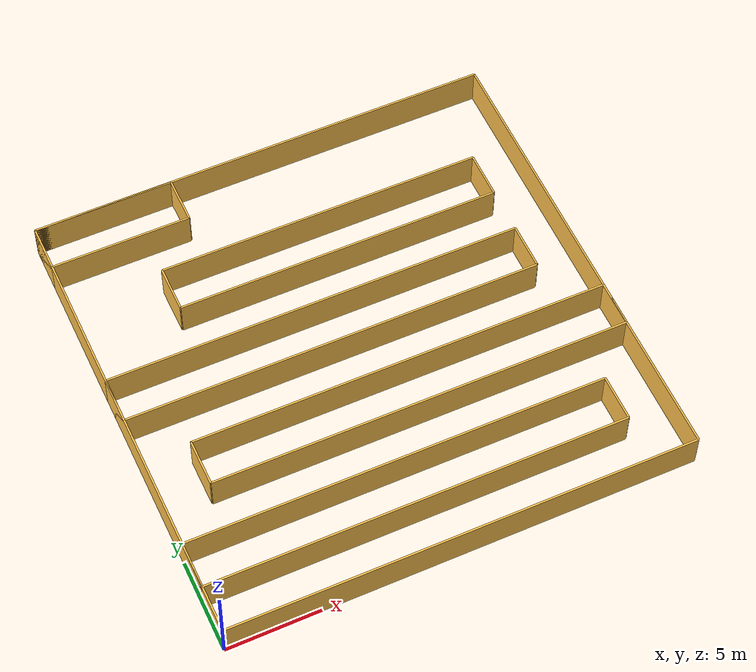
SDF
<?xml version='1.0' encoding='utf-8'?>
<sdf version="1.6">
  <model name="scene_2">
    <static>true</static>
    <link name="wall_0">
      <pose>11.25 2.5 1.0 0 0 0.0</pose>
      <self_collide>0</self_collide>
      <kinematic>0</kinematic>
      <visual name="wall_0_visual">
        <geometry>
          <box>
            <size>22.5 0.1 2.0</size>
            </box>
          </geometry>
        <material>
          <script>
            <uri>file://media/materials/scripts/gazebo.material</uri>
            <name>Gazebo/Grey</name>
            </script>
          <ambient>1 0.764706 0.305882 1</ambient>
          <diffuse>0.7 0.7 0.7 1</diffuse>
          <specular>0.01 0.01 0.01 1</specular>
          <emissive>0 0 0 1</emissive>
          <shader type="pixel" />
          </material>
        <cast_shadows>1</cast_shadows>
        <transparency>0</transparency>
        </visual>
      <collision name="wall_0_collision">
        <geometry>
          <box>
            <size>22.5 0.1 2.0</size>
            </box>
          </geometry>
        <laser_retro>0</laser_retro>
        <max_contacts>10</max_contacts>
        <surface>
          <friction>
            <ode>
              <mu>1</mu>
              <mu2>1</mu2>
              <fdir1>0 0 0</fdir1>
              <slip1>0</slip1>
              <slip2>0</slip2>
              </ode>
            </friction>
          <bounce>
            <restitution_coefficient>0</restitution_coefficient>
            <threshold>1000000</threshold>
            </bounce>
          <contact>
            <collide_without_contact>0</collide_without_contact>
            <collide_without_contact_bitmask>1</collide_without_contact_bitmask>
            <collide_bitmask>1</collide_bitmask>
            <ode>
              <soft_cfm>0</soft_cfm>
              <soft_erp>0.2</soft_erp>
              <kp>10000000000000.0</kp>
              <kd>1</kd>
              <max_vel>0.01</max_vel>
              <min_depth>0</min_depth>
              </ode>
            <bullet>
              <split_impulse>1</split_impulse>
              <split_impulse_penetration_threshold>-0.01</split_impulse_penetration_threshold>
              <soft_cfm>0</soft_cfm>
              <soft_erp>0.2</soft_erp>
              <kp>10000000000000.0</kp>
              <kd>1</kd>
              </bullet>
            </contact>
          </surface>
        </collision>
      </link>
    <link name="wall_1">
      <pose>22.5 3.75 1.0 0 0 1.5707963267948966</pose>
      <self_collide>0</self_collide>
      <kinematic>0</kinematic>
      <visual name="wall_1_visual">
        <geometry>
          <box>
            <size>2.5 0.1 2.0</size>
            </box>
          </geometry>
        <material>
          <script>
            <uri>file://media/materials/scripts/gazebo.material</uri>
            <name>Gazebo/Grey</name>
            </script>
          <ambient>1 0.764706 0.305882 1</ambient>
          <diffuse>0.7 0.7 0.7 1</diffuse>
          <specular>0.01 0.01 0.01 1</specular>
          <emissive>0 0 0 1</emissive>
          <shader type="pixel" />
          </material>
        <cast_shadows>1</cast_shadows>
        <transparency>0</transparency>
        </visual>
      <collision name="wall_1_collision">
        <geometry>
          <box>
            <size>2.5 0.1 2.0</size>
            </box>
          </geometry>
        <laser_retro>0</laser_retro>
        <max_contacts>10</max_contacts>
        <surface>
          <friction>
            <ode>
              <mu>1</mu>
              <mu2>1</mu2>
              <fdir1>0 0 0</fdir1>
              <slip1>0</slip1>
              <slip2>0</slip2>
              </ode>
            </friction>
          <bounce>
            <restitution_coefficient>0</restitution_coefficient>
            <threshold>1000000</threshold>
            </bounce>
          <contact>
            <collide_without_contact>0</collide_without_contact>
            <collide_without_contact_bitmask>1</collide_without_contact_bitmask>
            <collide_bitmask>1</collide_bitmask>
            <ode>
              <soft_cfm>0</soft_cfm>
              <soft_erp>0.2</soft_erp>
              <kp>10000000000000.0</kp>
              <kd>1</kd>
              <max_vel>0.01</max_vel>
              <min_depth>0</min_depth>
              </ode>
            <bullet>
              <split_impulse>1</split_impulse>
              <split_impulse_penetration_threshold>-0.01</split_impulse_penetration_threshold>
              <soft_cfm>0</soft_cfm>
              <soft_erp>0.2</soft_erp>
              <kp>10000000000000.0</kp>
              <kd>1</kd>
              </bullet>
            </contact>
          </surface>
        </collision>
      </link>
    <link name="wall_2">
      <pose>11.25 5.0 1.0 0 0 3.141592653589793</pose>
      <self_collide>0</self_collide>
      <kinematic>0</kinematic>
      <visual name="wall_2_visual">
        <geometry>
          <box>
            <size>22.5 0.1 2.0</size>
            </box>
          </geometry>
        <material>
          <script>
            <uri>file://media/materials/scripts/gazebo.material</uri>
            <name>Gazebo/Grey</name>
            </script>
          <ambient>1 0.764706 0.305882 1</ambient>
          <diffuse>0.7 0.7 0.7 1</diffuse>
          <specular>0.01 0.01 0.01 1</specular>
          <emissive>0 0 0 1</emissive>
          <shader type="pixel" />
          </material>
        <cast_shadows>1</cast_shadows>
        <transparency>0</transparency>
        </visual>
      <collision name="wall_2_collision">
        <geometry>
          <box>
            <size>22.5 0.1 2.0</size>
            </box>
          </geometry>
        <laser_retro>0</laser_retro>
        <max_contacts>10</max_contacts>
        <surface>
          <friction>
            <ode>
              <mu>1</mu>
              <mu2>1</mu2>
              <fdir1>0 0 0</fdir1>
              <slip1>0</slip1>
              <slip2>0</slip2>
              </ode>
            </friction>
          <bounce>
            <restitution_coefficient>0</restitution_coefficient>
            <threshold>1000000</threshold>
            </bounce>
          <contact>
            <collide_without_contact>0</collide_without_contact>
            <collide_without_contact_bitmask>1</collide_without_contact_bitmask>
            <collide_bitmask>1</collide_bitmask>
            <ode>
              <soft_cfm>0</soft_cfm>
              <soft_erp>0.2</soft_erp>
              <kp>10000000000000.0</kp>
              <kd>1</kd>
              <max_vel>0.01</max_vel>
              <min_depth>0</min_depth>
              </ode>
            <bullet>
              <split_impulse>1</split_impulse>
              <split_impulse_penetration_threshold>-0.01</split_impulse_penetration_threshold>
              <soft_cfm>0</soft_cfm>
              <soft_erp>0.2</soft_erp>
              <kp>10000000000000.0</kp>
              <kd>1</kd>
              </bullet>
            </contact>
          </surface>
        </collision>
      </link>
    <link name="wall_3">
      <pose>0.0 3.75 1.0 0 0 -1.5707963267948966</pose>
      <self_collide>0</self_collide>
      <kinematic>0</kinematic>
      <visual name="wall_3_visual">
        <geometry>
          <box>
            <size>2.5 0.1 2.0</size>
            </box>
          </geometry>
        <material>
          <script>
            <uri>file://media/materials/scripts/gazebo.material</uri>
            <name>Gazebo/Grey</name>
            </script>
          <ambient>1 0.764706 0.305882 1</ambient>
          <diffuse>0.7 0.7 0.7 1</diffuse>
          <specular>0.01 0.01 0.01 1</specular>
          <emissive>0 0 0 1</emissive>
          <shader type="pixel" />
          </material>
        <cast_shadows>1</cast_shadows>
        <transparency>0</transparency>
        </visual>
      <collision name="wall_3_collision">
        <geometry>
          <box>
            <size>2.5 0.1 2.0</size>
            </box>
          </geometry>
        <laser_retro>0</laser_retro>
        <max_contacts>10</max_contacts>
        <surface>
          <friction>
            <ode>
              <mu>1</mu>
              <mu2>1</mu2>
              <fdir1>0 0 0</fdir1>
              <slip1>0</slip1>
              <slip2>0</slip2>
              </ode>
            </friction>
          <bounce>
            <restitution_coefficient>0</restitution_coefficient>
            <threshold>1000000</threshold>
            </bounce>
          <contact>
            <collide_without_contact>0</collide_without_contact>
            <collide_without_contact_bitmask>1</collide_without_contact_bitmask>
            <collide_bitmask>1</collide_bitmask>
            <ode>
              <soft_cfm>0</soft_cfm>
              <soft_erp>0.2</soft_erp>
              <kp>10000000000000.0</kp>
              <kd>1</kd>
              <max_vel>0.01</max_vel>
              <min_depth>0</min_depth>
              </ode>
            <bullet>
              <split_impulse>1</split_impulse>
              <split_impulse_penetration_threshold>-0.01</split_impulse_penetration_threshold>
              <soft_cfm>0</soft_cfm>
              <soft_erp>0.2</soft_erp>
              <kp>10000000000000.0</kp>
              <kd>1</kd>
              </bullet>
            </contact>
          </surface>
        </collision>
      </link>
    <link name="wall_4">
      <pose>13.75 7.5 1.0 0 0 0.0</pose>
      <self_collide>0</self_collide>
      <kinematic>0</kinematic>
      <visual name="wall_4_visual">
        <geometry>
          <box>
            <size>22.5 0.1 2.0</size>
            </box>
          </geometry>
        <material>
          <script>
            <uri>file://media/materials/scripts/gazebo.material</uri>
            <name>Gazebo/Grey</name>
            </script>
          <ambient>1 0.764706 0.305882 1</ambient>
          <diffuse>0.7 0.7 0.7 1</diffuse>
          <specular>0.01 0.01 0.01 1</specular>
          <emissive>0 0 0 1</emissive>
          <shader type="pixel" />
          </material>
        <cast_shadows>1</cast_shadows>
        <transparency>0</transparency>
        </visual>
      <collision name="wall_4_collision">
        <geometry>
          <box>
            <size>22.5 0.1 2.0</size>
            </box>
          </geometry>
        <laser_retro>0</laser_retro>
        <max_contacts>10</max_contacts>
        <surface>
          <friction>
            <ode>
              <mu>1</mu>
              <mu2>1</mu2>
              <fdir1>0 0 0</fdir1>
              <slip1>0</slip1>
              <slip2>0</slip2>
              </ode>
            </friction>
          <bounce>
            <restitution_coefficient>0</restitution_coefficient>
            <threshold>1000000</threshold>
            </bounce>
          <contact>
            <collide_without_contact>0</collide_without_contact>
            <collide_without_contact_bitmask>1</collide_without_contact_bitmask>
            <collide_bitmask>1</collide_bitmask>
            <ode>
              <soft_cfm>0</soft_cfm>
              <soft_erp>0.2</soft_erp>
              <kp>10000000000000.0</kp>
              <kd>1</kd>
              <max_vel>0.01</max_vel>
              <min_depth>0</min_depth>
              </ode>
            <bullet>
              <split_impulse>1</split_impulse>
              <split_impulse_penetration_threshold>-0.01</split_impulse_penetration_threshold>
              <soft_cfm>0</soft_cfm>
              <soft_erp>0.2</soft_erp>
              <kp>10000000000000.0</kp>
              <kd>1</kd>
              </bullet>
            </contact>
          </surface>
        </collision>
      </link>
    <link name="wall_5">
      <pose>25.0 8.75 1.0 0 0 1.5707963267948966</pose>
      <self_collide>0</self_collide>
      <kinematic>0</kinematic>
      <visual name="wall_5_visual">
        <geometry>
          <box>
            <size>2.5 0.1 2.0</size>
            </box>
          </geometry>
        <material>
          <script>
            <uri>file://media/materials/scripts/gazebo.material</uri>
            <name>Gazebo/Grey</name>
            </script>
          <ambient>1 0.764706 0.305882 1</ambient>
          <diffuse>0.7 0.7 0.7 1</diffuse>
          <specular>0.01 0.01 0.01 1</specular>
          <emissive>0 0 0 1</emissive>
          <shader type="pixel" />
          </material>
        <cast_shadows>1</cast_shadows>
        <transparency>0</transparency>
        </visual>
      <collision name="wall_5_collision">
        <geometry>
          <box>
            <size>2.5 0.1 2.0</size>
            </box>
          </geometry>
        <laser_retro>0</laser_retro>
        <max_contacts>10</max_contacts>
        <surface>
          <friction>
            <ode>
              <mu>1</mu>
              <mu2>1</mu2>
              <fdir1>0 0 0</fdir1>
              <slip1>0</slip1>
              <slip2>0</slip2>
              </ode>
            </friction>
          <bounce>
            <restitution_coefficient>0</restitution_coefficient>
            <threshold>1000000</threshold>
            </bounce>
          <contact>
            <collide_without_contact>0</collide_without_contact>
            <collide_without_contact_bitmask>1</collide_without_contact_bitmask>
            <collide_bitmask>1</collide_bitmask>
            <ode>
              <soft_cfm>0</soft_cfm>
              <soft_erp>0.2</soft_erp>
              <kp>10000000000000.0</kp>
              <kd>1</kd>
              <max_vel>0.01</max_vel>
              <min_depth>0</min_depth>
              </ode>
            <bullet>
              <split_impulse>1</split_impulse>
              <split_impulse_penetration_threshold>-0.01</split_impulse_penetration_threshold>
              <soft_cfm>0</soft_cfm>
              <soft_erp>0.2</soft_erp>
              <kp>10000000000000.0</kp>
              <kd>1</kd>
              </bullet>
            </contact>
          </surface>
        </collision>
      </link>
    <link name="wall_6">
      <pose>13.75 10.0 1.0 0 0 3.141592653589793</pose>
      <self_collide>0</self_collide>
      <kinematic>0</kinematic>
      <visual name="wall_6_visual">
        <geometry>
          <box>
            <size>22.5 0.1 2.0</size>
            </box>
          </geometry>
        <material>
          <script>
            <uri>file://media/materials/scripts/gazebo.material</uri>
            <name>Gazebo/Grey</name>
            </script>
          <ambient>1 0.764706 0.305882 1</ambient>
          <diffuse>0.7 0.7 0.7 1</diffuse>
          <specular>0.01 0.01 0.01 1</specular>
          <emissive>0 0 0 1</emissive>
          <shader type="pixel" />
          </material>
        <cast_shadows>1</cast_shadows>
        <transparency>0</transparency>
        </visual>
      <collision name="wall_6_collision">
        <geometry>
          <box>
            <size>22.5 0.1 2.0</size>
            </box>
          </geometry>
        <laser_retro>0</laser_retro>
        <max_contacts>10</max_contacts>
        <surface>
          <friction>
            <ode>
              <mu>1</mu>
              <mu2>1</mu2>
              <fdir1>0 0 0</fdir1>
              <slip1>0</slip1>
              <slip2>0</slip2>
              </ode>
            </friction>
          <bounce>
            <restitution_coefficient>0</restitution_coefficient>
            <threshold>1000000</threshold>
            </bounce>
          <contact>
            <collide_without_contact>0</collide_without_contact>
            <collide_without_contact_bitmask>1</collide_without_contact_bitmask>
            <collide_bitmask>1</collide_bitmask>
            <ode>
              <soft_cfm>0</soft_cfm>
              <soft_erp>0.2</soft_erp>
              <kp>10000000000000.0</kp>
              <kd>1</kd>
              <max_vel>0.01</max_vel>
              <min_depth>0</min_depth>
              </ode>
            <bullet>
              <split_impulse>1</split_impulse>
              <split_impulse_penetration_threshold>-0.01</split_impulse_penetration_threshold>
              <soft_cfm>0</soft_cfm>
              <soft_erp>0.2</soft_erp>
              <kp>10000000000000.0</kp>
              <kd>1</kd>
              </bullet>
            </contact>
          </surface>
        </collision>
      </link>
    <link name="wall_7">
      <pose>2.5 8.75 1.0 0 0 -1.5707963267948966</pose>
      <self_collide>0</self_collide>
      <kinematic>0</kinematic>
      <visual name="wall_7_visual">
        <geometry>
          <box>
            <size>2.5 0.1 2.0</size>
            </box>
          </geometry>
        <material>
          <script>
            <uri>file://media/materials/scripts/gazebo.material</uri>
            <name>Gazebo/Grey</name>
            </script>
          <ambient>1 0.764706 0.305882 1</ambient>
          <diffuse>0.7 0.7 0.7 1</diffuse>
          <specular>0.01 0.01 0.01 1</specular>
          <emissive>0 0 0 1</emissive>
          <shader type="pixel" />
          </material>
        <cast_shadows>1</cast_shadows>
        <transparency>0</transparency>
        </visual>
      <collision name="wall_7_collision">
        <geometry>
          <box>
            <size>2.5 0.1 2.0</size>
            </box>
          </geometry>
        <laser_retro>0</laser_retro>
        <max_contacts>10</max_contacts>
        <surface>
          <friction>
            <ode>
              <mu>1</mu>
              <mu2>1</mu2>
              <fdir1>0 0 0</fdir1>
              <slip1>0</slip1>
              <slip2>0</slip2>
              </ode>
            </friction>
          <bounce>
            <restitution_coefficient>0</restitution_coefficient>
            <threshold>1000000</threshold>
            </bounce>
          <contact>
            <collide_without_contact>0</collide_without_contact>
            <collide_without_contact_bitmask>1</collide_without_contact_bitmask>
            <collide_bitmask>1</collide_bitmask>
            <ode>
              <soft_cfm>0</soft_cfm>
              <soft_erp>0.2</soft_erp>
              <kp>10000000000000.0</kp>
              <kd>1</kd>
              <max_vel>0.01</max_vel>
              <min_depth>0</min_depth>
              </ode>
            <bullet>
              <split_impulse>1</split_impulse>
              <split_impulse_penetration_threshold>-0.01</split_impulse_penetration_threshold>
              <soft_cfm>0</soft_cfm>
              <soft_erp>0.2</soft_erp>
              <kp>10000000000000.0</kp>
              <kd>1</kd>
              </bullet>
            </contact>
          </surface>
        </collision>
      </link>
    <link name="wall_8">
      <pose>11.25 12.5 1.0 0 0 0.0</pose>
      <self_collide>0</self_collide>
      <kinematic>0</kinematic>
      <visual name="wall_8_visual">
        <geometry>
          <box>
            <size>22.5 0.1 2.0</size>
            </box>
          </geometry>
        <material>
          <script>
            <uri>file://media/materials/scripts/gazebo.material</uri>
            <name>Gazebo/Grey</name>
            </script>
          <ambient>1 0.764706 0.305882 1</ambient>
          <diffuse>0.7 0.7 0.7 1</diffuse>
          <specular>0.01 0.01 0.01 1</specular>
          <emissive>0 0 0 1</emissive>
          <shader type="pixel" />
          </material>
        <cast_shadows>1</cast_shadows>
        <transparency>0</transparency>
        </visual>
      <collision name="wall_8_collision">
        <geometry>
          <box>
            <size>22.5 0.1 2.0</size>
            </box>
          </geometry>
        <laser_retro>0</laser_retro>
        <max_contacts>10</max_contacts>
        <surface>
          <friction>
            <ode>
              <mu>1</mu>
              <mu2>1</mu2>
              <fdir1>0 0 0</fdir1>
              <slip1>0</slip1>
              <slip2>0</slip2>
              </ode>
            </friction>
          <bounce>
            <restitution_coefficient>0</restitution_coefficient>
            <threshold>1000000</threshold>
            </bounce>
          <contact>
            <collide_without_contact>0</collide_without_contact>
            <collide_without_contact_bitmask>1</collide_without_contact_bitmask>
            <collide_bitmask>1</collide_bitmask>
            <ode>
              <soft_cfm>0</soft_cfm>
              <soft_erp>0.2</soft_erp>
              <kp>10000000000000.0</kp>
              <kd>1</kd>
              <max_vel>0.01</max_vel>
              <min_depth>0</min_depth>
              </ode>
            <bullet>
              <split_impulse>1</split_impulse>
              <split_impulse_penetration_threshold>-0.01</split_impulse_penetration_threshold>
              <soft_cfm>0</soft_cfm>
              <soft_erp>0.2</soft_erp>
              <kp>10000000000000.0</kp>
              <kd>1</kd>
              </bullet>
            </contact>
          </surface>
        </collision>
      </link>
    <link name="wall_9">
      <pose>22.5 13.75 1.0 0 0 1.5707963267948966</pose>
      <self_collide>0</self_collide>
      <kinematic>0</kinematic>
      <visual name="wall_9_visual">
        <geometry>
          <box>
            <size>2.5 0.1 2.0</size>
            </box>
          </geometry>
        <material>
          <script>
            <uri>file://media/materials/scripts/gazebo.material</uri>
            <name>Gazebo/Grey</name>
            </script>
          <ambient>1 0.764706 0.305882 1</ambient>
          <diffuse>0.7 0.7 0.7 1</diffuse>
          <specular>0.01 0.01 0.01 1</specular>
          <emissive>0 0 0 1</emissive>
          <shader type="pixel" />
          </material>
        <cast_shadows>1</cast_shadows>
        <transparency>0</transparency>
        </visual>
      <collision name="wall_9_collision">
        <geometry>
          <box>
            <size>2.5 0.1 2.0</size>
            </box>
          </geometry>
        <laser_retro>0</laser_retro>
        <max_contacts>10</max_contacts>
        <surface>
          <friction>
            <ode>
              <mu>1</mu>
              <mu2>1</mu2>
              <fdir1>0 0 0</fdir1>
              <slip1>0</slip1>
              <slip2>0</slip2>
              </ode>
            </friction>
          <bounce>
            <restitution_coefficient>0</restitution_coefficient>
            <threshold>1000000</threshold>
            </bounce>
          <contact>
            <collide_without_contact>0</collide_without_contact>
            <collide_without_contact_bitmask>1</collide_without_contact_bitmask>
            <collide_bitmask>1</collide_bitmask>
            <ode>
              <soft_cfm>0</soft_cfm>
              <soft_erp>0.2</soft_erp>
              <kp>10000000000000.0</kp>
              <kd>1</kd>
              <max_vel>0.01</max_vel>
              <min_depth>0</min_depth>
              </ode>
            <bullet>
              <split_impulse>1</split_impulse>
              <split_impulse_penetration_threshold>-0.01</split_impulse_penetration_threshold>
              <soft_cfm>0</soft_cfm>
              <soft_erp>0.2</soft_erp>
              <kp>10000000000000.0</kp>
              <kd>1</kd>
              </bullet>
            </contact>
          </surface>
        </collision>
      </link>
    <link name="wall_10">
      <pose>11.25 15.0 1.0 0 0 3.141592653589793</pose>
      <self_collide>0</self_collide>
      <kinematic>0</kinematic>
      <visual name="wall_10_visual">
        <geometry>
          <box>
            <size>22.5 0.1 2.0</size>
            </box>
          </geometry>
        <material>
          <script>
            <uri>file://media/materials/scripts/gazebo.material</uri>
            <name>Gazebo/Grey</name>
            </script>
          <ambient>1 0.764706 0.305882 1</ambient>
          <diffuse>0.7 0.7 0.7 1</diffuse>
          <specular>0.01 0.01 0.01 1</specular>
          <emissive>0 0 0 1</emissive>
          <shader type="pixel" />
          </material>
        <cast_shadows>1</cast_shadows>
        <transparency>0</transparency>
        </visual>
      <collision name="wall_10_collision">
        <geometry>
          <box>
            <size>22.5 0.1 2.0</size>
            </box>
          </geometry>
        <laser_retro>0</laser_retro>
        <max_contacts>10</max_contacts>
        <surface>
          <friction>
            <ode>
              <mu>1</mu>
              <mu2>1</mu2>
              <fdir1>0 0 0</fdir1>
              <slip1>0</slip1>
              <slip2>0</slip2>
              </ode>
            </friction>
          <bounce>
            <restitution_coefficient>0</restitution_coefficient>
            <threshold>1000000</threshold>
            </bounce>
          <contact>
            <collide_without_contact>0</collide_without_contact>
            <collide_without_contact_bitmask>1</collide_without_contact_bitmask>
            <collide_bitmask>1</collide_bitmask>
            <ode>
              <soft_cfm>0</soft_cfm>
              <soft_erp>0.2</soft_erp>
              <kp>10000000000000.0</kp>
              <kd>1</kd>
              <max_vel>0.01</max_vel>
              <min_depth>0</min_depth>
              </ode>
            <bullet>
              <split_impulse>1</split_impulse>
              <split_impulse_penetration_threshold>-0.01</split_impulse_penetration_threshold>
              <soft_cfm>0</soft_cfm>
              <soft_erp>0.2</soft_erp>
              <kp>10000000000000.0</kp>
              <kd>1</kd>
              </bullet>
            </contact>
          </surface>
        </collision>
      </link>
    <link name="wall_11">
      <pose>0.0 13.75 1.0 0 0 -1.5707963267948966</pose>
      <self_collide>0</self_collide>
      <kinematic>0</kinematic>
      <visual name="wall_11_visual">
        <geometry>
          <box>
            <size>2.5 0.1 2.0</size>
            </box>
          </geometry>
        <material>
          <script>
            <uri>file://media/materials/scripts/gazebo.material</uri>
            <name>Gazebo/Grey</name>
            </script>
          <ambient>1 0.764706 0.305882 1</ambient>
          <diffuse>0.7 0.7 0.7 1</diffuse>
          <specular>0.01 0.01 0.01 1</specular>
          <emissive>0 0 0 1</emissive>
          <shader type="pixel" />
          </material>
        <cast_shadows>1</cast_shadows>
        <transparency>0</transparency>
        </visual>
      <collision name="wall_11_collision">
        <geometry>
          <box>
            <size>2.5 0.1 2.0</size>
            </box>
          </geometry>
        <laser_retro>0</laser_retro>
        <max_contacts>10</max_contacts>
        <surface>
          <friction>
            <ode>
              <mu>1</mu>
              <mu2>1</mu2>
              <fdir1>0 0 0</fdir1>
              <slip1>0</slip1>
              <slip2>0</slip2>
              </ode>
            </friction>
          <bounce>
            <restitution_coefficient>0</restitution_coefficient>
            <threshold>1000000</threshold>
            </bounce>
          <contact>
            <collide_without_contact>0</collide_without_contact>
            <collide_without_contact_bitmask>1</collide_without_contact_bitmask>
            <collide_bitmask>1</collide_bitmask>
            <ode>
              <soft_cfm>0</soft_cfm>
              <soft_erp>0.2</soft_erp>
              <kp>10000000000000.0</kp>
              <kd>1</kd>
              <max_vel>0.01</max_vel>
              <min_depth>0</min_depth>
              </ode>
            <bullet>
              <split_impulse>1</split_impulse>
              <split_impulse_penetration_threshold>-0.01</split_impulse_penetration_threshold>
              <soft_cfm>0</soft_cfm>
              <soft_erp>0.2</soft_erp>
              <kp>10000000000000.0</kp>
              <kd>1</kd>
              </bullet>
            </contact>
          </surface>
        </collision>
      </link>
    <link name="wall_12">
      <pose>13.75 17.5 1.0 0 0 0.0</pose>
      <self_collide>0</self_collide>
      <kinematic>0</kinematic>
      <visual name="wall_12_visual">
        <geometry>
          <box>
            <size>17.5 0.1 2.0</size>
            </box>
          </geometry>
        <material>
          <script>
            <uri>file://media/materials/scripts/gazebo.material</uri>
            <name>Gazebo/Grey</name>
            </script>
          <ambient>1 0.764706 0.305882 1</ambient>
          <diffuse>0.7 0.7 0.7 1</diffuse>
          <specular>0.01 0.01 0.01 1</specular>
          <emissive>0 0 0 1</emissive>
          <shader type="pixel" />
          </material>
        <cast_shadows>1</cast_shadows>
        <transparency>0</transparency>
        </visual>
      <collision name="wall_12_collision">
        <geometry>
          <box>
            <size>17.5 0.1 2.0</size>
            </box>
          </geometry>
        <laser_retro>0</laser_retro>
        <max_contacts>10</max_contacts>
        <surface>
          <friction>
            <ode>
              <mu>1</mu>
              <mu2>1</mu2>
              <fdir1>0 0 0</fdir1>
              <slip1>0</slip1>
              <slip2>0</slip2>
              </ode>
            </friction>
          <bounce>
            <restitution_coefficient>0</restitution_coefficient>
            <threshold>1000000</threshold>
            </bounce>
          <contact>
            <collide_without_contact>0</collide_without_contact>
            <collide_without_contact_bitmask>1</collide_without_contact_bitmask>
            <collide_bitmask>1</collide_bitmask>
            <ode>
              <soft_cfm>0</soft_cfm>
              <soft_erp>0.2</soft_erp>
              <kp>10000000000000.0</kp>
              <kd>1</kd>
              <max_vel>0.01</max_vel>
              <min_depth>0</min_depth>
              </ode>
            <bullet>
              <split_impulse>1</split_impulse>
              <split_impulse_penetration_threshold>-0.01</split_impulse_penetration_threshold>
              <soft_cfm>0</soft_cfm>
              <soft_erp>0.2</soft_erp>
              <kp>10000000000000.0</kp>
              <kd>1</kd>
              </bullet>
            </contact>
          </surface>
        </collision>
      </link>
    <link name="wall_13">
      <pose>22.5 18.75 1.0 0 0 1.5707963267948966</pose>
      <self_collide>0</self_collide>
      <kinematic>0</kinematic>
      <visual name="wall_13_visual">
        <geometry>
          <box>
            <size>2.5 0.1 2.0</size>
            </box>
          </geometry>
        <material>
          <script>
            <uri>file://media/materials/scripts/gazebo.material</uri>
            <name>Gazebo/Grey</name>
            </script>
          <ambient>1 0.764706 0.305882 1</ambient>
          <diffuse>0.7 0.7 0.7 1</diffuse>
          <specular>0.01 0.01 0.01 1</specular>
          <emissive>0 0 0 1</emissive>
          <shader type="pixel" />
          </material>
        <cast_shadows>1</cast_shadows>
        <transparency>0</transparency>
        </visual>
      <collision name="wall_13_collision">
        <geometry>
          <box>
            <size>2.5 0.1 2.0</size>
            </box>
          </geometry>
        <laser_retro>0</laser_retro>
        <max_contacts>10</max_contacts>
        <surface>
          <friction>
            <ode>
              <mu>1</mu>
              <mu2>1</mu2>
              <fdir1>0 0 0</fdir1>
              <slip1>0</slip1>
              <slip2>0</slip2>
              </ode>
            </friction>
          <bounce>
            <restitution_coefficient>0</restitution_coefficient>
            <threshold>1000000</threshold>
            </bounce>
          <contact>
            <collide_without_contact>0</collide_without_contact>
            <collide_without_contact_bitmask>1</collide_without_contact_bitmask>
            <collide_bitmask>1</collide_bitmask>
            <ode>
              <soft_cfm>0</soft_cfm>
              <soft_erp>0.2</soft_erp>
              <kp>10000000000000.0</kp>
              <kd>1</kd>
              <max_vel>0.01</max_vel>
              <min_depth>0</min_depth>
              </ode>
            <bullet>
              <split_impulse>1</split_impulse>
              <split_impulse_penetration_threshold>-0.01</split_impulse_penetration_threshold>
              <soft_cfm>0</soft_cfm>
              <soft_erp>0.2</soft_erp>
              <kp>10000000000000.0</kp>
              <kd>1</kd>
              </bullet>
            </contact>
          </surface>
        </collision>
      </link>
    <link name="wall_14">
      <pose>13.75 20.0 1.0 0 0 3.141592653589793</pose>
      <self_collide>0</self_collide>
      <kinematic>0</kinematic>
      <visual name="wall_14_visual">
        <geometry>
          <box>
            <size>17.5 0.1 2.0</size>
            </box>
          </geometry>
        <material>
          <script>
            <uri>file://media/materials/scripts/gazebo.material</uri>
            <name>Gazebo/Grey</name>
            </script>
          <ambient>1 0.764706 0.305882 1</ambient>
          <diffuse>0.7 0.7 0.7 1</diffuse>
          <specular>0.01 0.01 0.01 1</specular>
          <emissive>0 0 0 1</emissive>
          <shader type="pixel" />
          </material>
        <cast_shadows>1</cast_shadows>
        <transparency>0</transparency>
        </visual>
      <collision name="wall_14_collision">
        <geometry>
          <box>
            <size>17.5 0.1 2.0</size>
            </box>
          </geometry>
        <laser_retro>0</laser_retro>
        <max_contacts>10</max_contacts>
        <surface>
          <friction>
            <ode>
              <mu>1</mu>
              <mu2>1</mu2>
              <fdir1>0 0 0</fdir1>
              <slip1>0</slip1>
              <slip2>0</slip2>
              </ode>
            </friction>
          <bounce>
            <restitution_coefficient>0</restitution_coefficient>
            <threshold>1000000</threshold>
            </bounce>
          <contact>
            <collide_without_contact>0</collide_without_contact>
            <collide_without_contact_bitmask>1</collide_without_contact_bitmask>
            <collide_bitmask>1</collide_bitmask>
            <ode>
              <soft_cfm>0</soft_cfm>
              <soft_erp>0.2</soft_erp>
              <kp>10000000000000.0</kp>
              <kd>1</kd>
              <max_vel>0.01</max_vel>
              <min_depth>0</min_depth>
              </ode>
            <bullet>
              <split_impulse>1</split_impulse>
              <split_impulse_penetration_threshold>-0.01</split_impulse_penetration_threshold>
              <soft_cfm>0</soft_cfm>
              <soft_erp>0.2</soft_erp>
              <kp>10000000000000.0</kp>
              <kd>1</kd>
              </bullet>
            </contact>
          </surface>
        </collision>
      </link>
    <link name="wall_15">
      <pose>5.0 18.75 1.0 0 0 -1.5707963267948966</pose>
      <self_collide>0</self_collide>
      <kinematic>0</kinematic>
      <visual name="wall_15_visual">
        <geometry>
          <box>
            <size>2.5 0.1 2.0</size>
            </box>
          </geometry>
        <material>
          <script>
            <uri>file://media/materials/scripts/gazebo.material</uri>
            <name>Gazebo/Grey</name>
            </script>
          <ambient>1 0.764706 0.305882 1</ambient>
          <diffuse>0.7 0.7 0.7 1</diffuse>
          <specular>0.01 0.01 0.01 1</specular>
          <emissive>0 0 0 1</emissive>
          <shader type="pixel" />
          </material>
        <cast_shadows>1</cast_shadows>
        <transparency>0</transparency>
        </visual>
      <collision name="wall_15_collision">
        <geometry>
          <box>
            <size>2.5 0.1 2.0</size>
            </box>
          </geometry>
        <laser_retro>0</laser_retro>
        <max_contacts>10</max_contacts>
        <surface>
          <friction>
            <ode>
              <mu>1</mu>
              <mu2>1</mu2>
              <fdir1>0 0 0</fdir1>
              <slip1>0</slip1>
              <slip2>0</slip2>
              </ode>
            </friction>
          <bounce>
            <restitution_coefficient>0</restitution_coefficient>
            <threshold>1000000</threshold>
            </bounce>
          <contact>
            <collide_without_contact>0</collide_without_contact>
            <collide_without_contact_bitmask>1</collide_without_contact_bitmask>
            <collide_bitmask>1</collide_bitmask>
            <ode>
              <soft_cfm>0</soft_cfm>
              <soft_erp>0.2</soft_erp>
              <kp>10000000000000.0</kp>
              <kd>1</kd>
              <max_vel>0.01</max_vel>
              <min_depth>0</min_depth>
              </ode>
            <bullet>
              <split_impulse>1</split_impulse>
              <split_impulse_penetration_threshold>-0.01</split_impulse_penetration_threshold>
              <soft_cfm>0</soft_cfm>
              <soft_erp>0.2</soft_erp>
              <kp>10000000000000.0</kp>
              <kd>1</kd>
              </bullet>
            </contact>
          </surface>
        </collision>
      </link>
    <link name="wall_16">
      <pose>3.75 22.5 1.0 0 0 0.0</pose>
      <self_collide>0</self_collide>
      <kinematic>0</kinematic>
      <visual name="wall_16_visual">
        <geometry>
          <box>
            <size>7.5 0.1 2.0</size>
            </box>
          </geometry>
        <material>
          <script>
            <uri>file://media/materials/scripts/gazebo.material</uri>
            <name>Gazebo/Grey</name>
            </script>
          <ambient>1 0.764706 0.305882 1</ambient>
          <diffuse>0.7 0.7 0.7 1</diffuse>
          <specular>0.01 0.01 0.01 1</specular>
          <emissive>0 0 0 1</emissive>
          <shader type="pixel" />
          </material>
        <cast_shadows>1</cast_shadows>
        <transparency>0</transparency>
        </visual>
      <collision name="wall_16_collision">
        <geometry>
          <box>
            <size>7.5 0.1 2.0</size>
            </box>
          </geometry>
        <laser_retro>0</laser_retro>
        <max_contacts>10</max_contacts>
        <surface>
          <friction>
            <ode>
              <mu>1</mu>
              <mu2>1</mu2>
              <fdir1>0 0 0</fdir1>
              <slip1>0</slip1>
              <slip2>0</slip2>
              </ode>
            </friction>
          <bounce>
            <restitution_coefficient>0</restitution_coefficient>
            <threshold>1000000</threshold>
            </bounce>
          <contact>
            <collide_without_contact>0</collide_without_contact>
            <collide_without_contact_bitmask>1</collide_without_contact_bitmask>
            <collide_bitmask>1</collide_bitmask>
            <ode>
              <soft_cfm>0</soft_cfm>
              <soft_erp>0.2</soft_erp>
              <kp>10000000000000.0</kp>
              <kd>1</kd>
              <max_vel>0.01</max_vel>
              <min_depth>0</min_depth>
              </ode>
            <bullet>
              <split_impulse>1</split_impulse>
              <split_impulse_penetration_threshold>-0.01</split_impulse_penetration_threshold>
              <soft_cfm>0</soft_cfm>
              <soft_erp>0.2</soft_erp>
              <kp>10000000000000.0</kp>
              <kd>1</kd>
              </bullet>
            </contact>
          </surface>
        </collision>
      </link>
    <link name="wall_17">
      <pose>7.5 23.75 1.0 0 0 1.5707963267948966</pose>
      <self_collide>0</self_collide>
      <kinematic>0</kinematic>
      <visual name="wall_17_visual">
        <geometry>
          <box>
            <size>2.5 0.1 2.0</size>
            </box>
          </geometry>
        <material>
          <script>
            <uri>file://media/materials/scripts/gazebo.material</uri>
            <name>Gazebo/Grey</name>
            </script>
          <ambient>1 0.764706 0.305882 1</ambient>
          <diffuse>0.7 0.7 0.7 1</diffuse>
          <specular>0.01 0.01 0.01 1</specular>
          <emissive>0 0 0 1</emissive>
          <shader type="pixel" />
          </material>
        <cast_shadows>1</cast_shadows>
        <transparency>0</transparency>
        </visual>
      <collision name="wall_17_collision">
        <geometry>
          <box>
            <size>2.5 0.1 2.0</size>
            </box>
          </geometry>
        <laser_retro>0</laser_retro>
        <max_contacts>10</max_contacts>
        <surface>
          <friction>
            <ode>
              <mu>1</mu>
              <mu2>1</mu2>
              <fdir1>0 0 0</fdir1>
              <slip1>0</slip1>
              <slip2>0</slip2>
              </ode>
            </friction>
          <bounce>
            <restitution_coefficient>0</restitution_coefficient>
            <threshold>1000000</threshold>
            </bounce>
          <contact>
            <collide_without_contact>0</collide_without_contact>
            <collide_without_contact_bitmask>1</collide_without_contact_bitmask>
            <collide_bitmask>1</collide_bitmask>
            <ode>
              <soft_cfm>0</soft_cfm>
              <soft_erp>0.2</soft_erp>
              <kp>10000000000000.0</kp>
              <kd>1</kd>
              <max_vel>0.01</max_vel>
              <min_depth>0</min_depth>
              </ode>
            <bullet>
              <split_impulse>1</split_impulse>
              <split_impulse_penetration_threshold>-0.01</split_impulse_penetration_threshold>
              <soft_cfm>0</soft_cfm>
              <soft_erp>0.2</soft_erp>
              <kp>10000000000000.0</kp>
              <kd>1</kd>
              </bullet>
            </contact>
          </surface>
        </collision>
      </link>
    <link name="wall_18">
      <pose>3.75 25.0 1.0 0 0 3.141592653589793</pose>
      <self_collide>0</self_collide>
      <kinematic>0</kinematic>
      <visual name="wall_18_visual">
        <geometry>
          <box>
            <size>7.5 0.1 2.0</size>
            </box>
          </geometry>
        <material>
          <script>
            <uri>file://media/materials/scripts/gazebo.material</uri>
            <name>Gazebo/Grey</name>
            </script>
          <ambient>1 0.764706 0.305882 1</ambient>
          <diffuse>0.7 0.7 0.7 1</diffuse>
          <specular>0.01 0.01 0.01 1</specular>
          <emissive>0 0 0 1</emissive>
          <shader type="pixel" />
          </material>
        <cast_shadows>1</cast_shadows>
        <transparency>0</transparency>
        </visual>
      <collision name="wall_18_collision">
        <geometry>
          <box>
            <size>7.5 0.1 2.0</size>
            </box>
          </geometry>
        <laser_retro>0</laser_retro>
        <max_contacts>10</max_contacts>
        <surface>
          <friction>
            <ode>
              <mu>1</mu>
              <mu2>1</mu2>
              <fdir1>0 0 0</fdir1>
              <slip1>0</slip1>
              <slip2>0</slip2>
              </ode>
            </friction>
          <bounce>
            <restitution_coefficient>0</restitution_coefficient>
            <threshold>1000000</threshold>
            </bounce>
          <contact>
            <collide_without_contact>0</collide_without_contact>
            <collide_without_contact_bitmask>1</collide_without_contact_bitmask>
            <collide_bitmask>1</collide_bitmask>
            <ode>
              <soft_cfm>0</soft_cfm>
              <soft_erp>0.2</soft_erp>
              <kp>10000000000000.0</kp>
              <kd>1</kd>
              <max_vel>0.01</max_vel>
              <min_depth>0</min_depth>
              </ode>
            <bullet>
              <split_impulse>1</split_impulse>
              <split_impulse_penetration_threshold>-0.01</split_impulse_penetration_threshold>
              <soft_cfm>0</soft_cfm>
              <soft_erp>0.2</soft_erp>
              <kp>10000000000000.0</kp>
              <kd>1</kd>
              </bullet>
            </contact>
          </surface>
        </collision>
      </link>
    <link name="wall_19">
      <pose>0.0 23.75 1.0 0 0 -1.5707963267948966</pose>
      <self_collide>0</self_collide>
      <kinematic>0</kinematic>
      <visual name="wall_19_visual">
        <geometry>
          <box>
            <size>2.5 0.1 2.0</size>
            </box>
          </geometry>
        <material>
          <script>
            <uri>file://media/materials/scripts/gazebo.material</uri>
            <name>Gazebo/Grey</name>
            </script>
          <ambient>1 0.764706 0.305882 1</ambient>
          <diffuse>0.7 0.7 0.7 1</diffuse>
          <specular>0.01 0.01 0.01 1</specular>
          <emissive>0 0 0 1</emissive>
          <shader type="pixel" />
          </material>
        <cast_shadows>1</cast_shadows>
        <transparency>0</transparency>
        </visual>
      <collision name="wall_19_collision">
        <geometry>
          <box>
            <size>2.5 0.1 2.0</size>
            </box>
          </geometry>
        <laser_retro>0</laser_retro>
        <max_contacts>10</max_contacts>
        <surface>
          <friction>
            <ode>
              <mu>1</mu>
              <mu2>1</mu2>
              <fdir1>0 0 0</fdir1>
              <slip1>0</slip1>
              <slip2>0</slip2>
              </ode>
            </friction>
          <bounce>
            <restitution_coefficient>0</restitution_coefficient>
            <threshold>1000000</threshold>
            </bounce>
          <contact>
            <collide_without_contact>0</collide_without_contact>
            <collide_without_contact_bitmask>1</collide_without_contact_bitmask>
            <collide_bitmask>1</collide_bitmask>
            <ode>
              <soft_cfm>0</soft_cfm>
              <soft_erp>0.2</soft_erp>
              <kp>10000000000000.0</kp>
              <kd>1</kd>
              <max_vel>0.01</max_vel>
              <min_depth>0</min_depth>
              </ode>
            <bullet>
              <split_impulse>1</split_impulse>
              <split_impulse_penetration_threshold>-0.01</split_impulse_penetration_threshold>
              <soft_cfm>0</soft_cfm>
              <soft_erp>0.2</soft_erp>
              <kp>10000000000000.0</kp>
              <kd>1</kd>
              </bullet>
            </contact>
          </surface>
        </collision>
      </link>
    <link name="wall_20">
      <pose>12.5 0.0 1.0 0 0 0.0</pose>
      <self_collide>0</self_collide>
      <kinematic>0</kinematic>
      <visual name="wall_20_visual">
        <geometry>
          <box>
            <size>25.0 0.1 2.0</size>
            </box>
          </geometry>
        <material>
          <script>
            <uri>file://media/materials/scripts/gazebo.material</uri>
            <name>Gazebo/Grey</name>
            </script>
          <ambient>1 0.764706 0.305882 1</ambient>
          <diffuse>0.7 0.7 0.7 1</diffuse>
          <specular>0.01 0.01 0.01 1</specular>
          <emissive>0 0 0 1</emissive>
          <shader type="pixel" />
          </material>
        <cast_shadows>1</cast_shadows>
        <transparency>0</transparency>
        </visual>
      <collision name="wall_20_collision">
        <geometry>
          <box>
            <size>25.0 0.1 2.0</size>
            </box>
          </geometry>
        <laser_retro>0</laser_retro>
        <max_contacts>10</max_contacts>
        <surface>
          <friction>
            <ode>
              <mu>1</mu>
              <mu2>1</mu2>
              <fdir1>0 0 0</fdir1>
              <slip1>0</slip1>
              <slip2>0</slip2>
              </ode>
            </friction>
          <bounce>
            <restitution_coefficient>0</restitution_coefficient>
            <threshold>1000000</threshold>
            </bounce>
          <contact>
            <collide_without_contact>0</collide_without_contact>
            <collide_without_contact_bitmask>1</collide_without_contact_bitmask>
            <collide_bitmask>1</collide_bitmask>
            <ode>
              <soft_cfm>0</soft_cfm>
              <soft_erp>0.2</soft_erp>
              <kp>10000000000000.0</kp>
              <kd>1</kd>
              <max_vel>0.01</max_vel>
              <min_depth>0</min_depth>
              </ode>
            <bullet>
              <split_impulse>1</split_impulse>
              <split_impulse_penetration_threshold>-0.01</split_impulse_penetration_threshold>
              <soft_cfm>0</soft_cfm>
              <soft_erp>0.2</soft_erp>
              <kp>10000000000000.0</kp>
              <kd>1</kd>
              </bullet>
            </contact>
          </surface>
        </collision>
      </link>
    <link name="wall_21">
      <pose>25.0 12.5 1.0 0 0 1.5707963267948966</pose>
      <self_collide>0</self_collide>
      <kinematic>0</kinematic>
      <visual name="wall_21_visual">
        <geometry>
          <box>
            <size>25.0 0.1 2.0</size>
            </box>
          </geometry>
        <material>
          <script>
            <uri>file://media/materials/scripts/gazebo.material</uri>
            <name>Gazebo/Grey</name>
            </script>
          <ambient>1 0.764706 0.305882 1</ambient>
          <diffuse>0.7 0.7 0.7 1</diffuse>
          <specular>0.01 0.01 0.01 1</specular>
          <emissive>0 0 0 1</emissive>
          <shader type="pixel" />
          </material>
        <cast_shadows>1</cast_shadows>
        <transparency>0</transparency>
        </visual>
      <collision name="wall_21_collision">
        <geometry>
          <box>
            <size>25.0 0.1 2.0</size>
            </box>
          </geometry>
        <laser_retro>0</laser_retro>
        <max_contacts>10</max_contacts>
        <surface>
          <friction>
            <ode>
              <mu>1</mu>
              <mu2>1</mu2>
              <fdir1>0 0 0</fdir1>
              <slip1>0</slip1>
              <slip2>0</slip2>
              </ode>
            </friction>
          <bounce>
            <restitution_coefficient>0</restitution_coefficient>
            <threshold>1000000</threshold>
            </bounce>
          <contact>
            <collide_without_contact>0</collide_without_contact>
            <collide_without_contact_bitmask>1</collide_without_contact_bitmask>
            <collide_bitmask>1</collide_bitmask>
            <ode>
              <soft_cfm>0</soft_cfm>
              <soft_erp>0.2</soft_erp>
              <kp>10000000000000.0</kp>
              <kd>1</kd>
              <max_vel>0.01</max_vel>
              <min_depth>0</min_depth>
              </ode>
            <bullet>
              <split_impulse>1</split_impulse>
              <split_impulse_penetration_threshold>-0.01</split_impulse_penetration_threshold>
              <soft_cfm>0</soft_cfm>
              <soft_erp>0.2</soft_erp>
              <kp>10000000000000.0</kp>
              <kd>1</kd>
              </bullet>
            </contact>
          </surface>
        </collision>
      </link>
    <link name="wall_22">
      <pose>12.5 25.0 1.0 0 0 3.141592653589793</pose>
      <self_collide>0</self_collide>
      <kinematic>0</kinematic>
      <visual name="wall_22_visual">
        <geometry>
          <box>
            <size>25.0 0.1 2.0</size>
            </box>
          </geometry>
        <material>
          <script>
            <uri>file://media/materials/scripts/gazebo.material</uri>
            <name>Gazebo/Grey</name>
            </script>
          <ambient>1 0.764706 0.305882 1</ambient>
          <diffuse>0.7 0.7 0.7 1</diffuse>
          <specular>0.01 0.01 0.01 1</specular>
          <emissive>0 0 0 1</emissive>
          <shader type="pixel" />
          </material>
        <cast_shadows>1</cast_shadows>
        <transparency>0</transparency>
        </visual>
      <collision name="wall_22_collision">
        <geometry>
          <box>
            <size>25.0 0.1 2.0</size>
            </box>
          </geometry>
        <laser_retro>0</laser_retro>
        <max_contacts>10</max_contacts>
        <surface>
          <friction>
            <ode>
              <mu>1</mu>
              <mu2>1</mu2>
              <fdir1>0 0 0</fdir1>
              <slip1>0</slip1>
              <slip2>0</slip2>
              </ode>
            </friction>
          <bounce>
            <restitution_coefficient>0</restitution_coefficient>
            <threshold>1000000</threshold>
            </bounce>
          <contact>
            <collide_without_contact>0</collide_without_contact>
            <collide_without_contact_bitmask>1</collide_without_contact_bitmask>
            <collide_bitmask>1</collide_bitmask>
            <ode>
              <soft_cfm>0</soft_cfm>
              <soft_erp>0.2</soft_erp>
              <kp>10000000000000.0</kp>
              <kd>1</kd>
              <max_vel>0.01</max_vel>
              <min_depth>0</min_depth>
              </ode>
            <bullet>
              <split_impulse>1</split_impulse>
              <split_impulse_penetration_threshold>-0.01</split_impulse_penetration_threshold>
              <soft_cfm>0</soft_cfm>
              <soft_erp>0.2</soft_erp>
              <kp>10000000000000.0</kp>
              <kd>1</kd>
              </bullet>
            </contact>
          </surface>
        </collision>
      </link>
    <link name="wall_23">
      <pose>0.0 12.5 1.0 0 0 -1.5707963267948966</pose>
      <self_collide>0</self_collide>
      <kinematic>0</kinematic>
      <visual name="wall_23_visual">
        <geometry>
          <box>
            <size>25.0 0.1 2.0</size>
            </box>
          </geometry>
        <material>
          <script>
            <uri>file://media/materials/scripts/gazebo.material</uri>
            <name>Gazebo/Grey</name>
            </script>
          <ambient>1 0.764706 0.305882 1</ambient>
          <diffuse>0.7 0.7 0.7 1</diffuse>
          <specular>0.01 0.01 0.01 1</specular>
          <emissive>0 0 0 1</emissive>
          <shader type="pixel" />
          </material>
        <cast_shadows>1</cast_shadows>
        <transparency>0</transparency>
        </visual>
      <collision name="wall_23_collision">
        <geometry>
          <box>
            <size>25.0 0.1 2.0</size>
            </box>
          </geometry>
        <laser_retro>0</laser_retro>
        <max_contacts>10</max_contacts>
        <surface>
          <friction>
            <ode>
              <mu>1</mu>
              <mu2>1</mu2>
              <fdir1>0 0 0</fdir1>
              <slip1>0</slip1>
              <slip2>0</slip2>
              </ode>
            </friction>
          <bounce>
            <restitution_coefficient>0</restitution_coefficient>
            <threshold>1000000</threshold>
            </bounce>
          <contact>
            <collide_without_contact>0</collide_without_contact>
            <collide_without_contact_bitmask>1</collide_without_contact_bitmask>
            <collide_bitmask>1</collide_bitmask>
            <ode>
              <soft_cfm>0</soft_cfm>
              <soft_erp>0.2</soft_erp>
              <kp>10000000000000.0</kp>
              <kd>1</kd>
              <max_vel>0.01</max_vel>
              <min_depth>0</min_depth>
              </ode>
            <bullet>
              <split_impulse>1</split_impulse>
              <split_impulse_penetration_threshold>-0.01</split_impulse_penetration_threshold>
              <soft_cfm>0</soft_cfm>
              <soft_erp>0.2</soft_erp>
              <kp>10000000000000.0</kp>
              <kd>1</kd>
              </bullet>
            </contact>
          </surface>
        </collision>
      </link>
    </model>
  </sdf>
